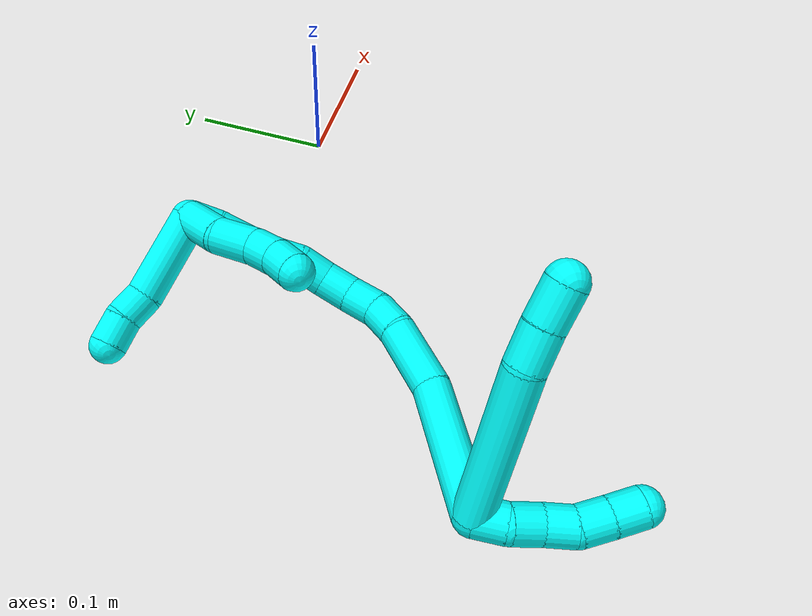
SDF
<sdf version="1.7">
 <world name="default">
  <model name="3">
   <static>0</static>
   <link name="3">
    <collision name="collision-cylinder-e_1_2_8">
     <pose>0.050005 0.000127 -0.001864 -3.07383 1.53345 -3.07125</pose>
     <geometry><cylinder><radius>0.0125</radius><length>0.100079</length></cylinder></geometry>
     <surface>
      <friction><ode><mu>1.16</mu><mu2>1.16</mu2><slip1>0</slip1><slip2>0</slip2></ode></friction>
      <contact><ode><kp>1e+06</kp><kd>1</kd><max_vel>0</max_vel><min_depth>0.001</min_depth></ode></contact>
     </surface>
    </collision>
    <visual name="visual-cylinder-e_1_2_8">
     <pose>0.050005 0.000127 -0.001864 -3.07383 1.53345 -3.07125</pose>
     <geometry><cylinder><radius>0.0125</radius><length>0.100079</length></cylinder></geometry>
     <material><ambient>0.003922 1 0.996078 1</ambient></material>
    </visual>
    <collision name="collision-cylinder-e_2_8_9">
     <pose>0.111988 -0.002067 -0.005598 2.24921 1.32697 2.04326</pose>
     <geometry><cylinder><radius>0.0125</radius><length>0.024687</length></cylinder></geometry>
     <surface>
      <friction><ode><mu>1.16</mu><mu2>1.16</mu2><slip1>0</slip1><slip2>0</slip2></ode></friction>
      <contact><ode><kp>1e+06</kp><kd>1</kd><max_vel>0</max_vel><min_depth>0.001</min_depth></ode></contact>
     </surface>
    </collision>
    <visual name="visual-cylinder-e_2_8_9">
     <pose>0.111988 -0.002067 -0.005598 2.24921 1.32697 2.04326</pose>
     <geometry><cylinder><radius>0.0125</radius><length>0.024687</length></cylinder></geometry>
     <material><ambient>0.003922 1 0.996078 1</ambient></material>
    </visual>
    <collision name="collision-cylinder-e_3_9_6">
     <pose>0.13608 -0.007505 -0.009117 2.05717 1.28753 1.78869</pose>
     <geometry><cylinder><radius>0.0125</radius><length>0.025234</length></cylinder></geometry>
     <surface>
      <friction><ode><mu>1.16</mu><mu2>1.16</mu2><slip1>0</slip1><slip2>0</slip2></ode></friction>
      <contact><ode><kp>1e+06</kp><kd>1</kd><max_vel>0</max_vel><min_depth>0.001</min_depth></ode></contact>
     </surface>
    </collision>
    <visual name="visual-cylinder-e_3_9_6">
     <pose>0.13608 -0.007505 -0.009117 2.05717 1.28753 1.78869</pose>
     <geometry><cylinder><radius>0.0125</radius><length>0.025234</length></cylinder></geometry>
     <material><ambient>0.003922 1 0.996078 1</ambient></material>
    </visual>
    <collision name="collision-cylinder-e_1_2_10">
     <pose>0.001279 -0.008618 0.004908 1.05312 0.128259 0.074626</pose>
     <geometry><cylinder><radius>0.0125</radius><length>0.02</length></cylinder></geometry>
     <surface>
      <friction><ode><mu>1.16</mu><mu2>1.16</mu2><slip1>0</slip1><slip2>0</slip2></ode></friction>
      <contact><ode><kp>1e+06</kp><kd>1</kd><max_vel>0</max_vel><min_depth>0.001</min_depth></ode></contact>
     </surface>
    </collision>
    <visual name="visual-cylinder-e_1_2_10">
     <pose>0.001279 -0.008618 0.004908 1.05312 0.128259 0.074626</pose>
     <geometry><cylinder><radius>0.0125</radius><length>0.02</length></cylinder></geometry>
     <material><ambient>0.003922 1 0.996078 1</ambient></material>
    </visual>
    <collision name="collision-cylinder-e_2_10_11">
     <pose>0.003346 -0.027054 0.011546 1.39638 0.078839 0.066172</pose>
     <geometry><cylinder><radius>0.0125</radius><length>0.02</length></cylinder></geometry>
     <surface>
      <friction><ode><mu>1.16</mu><mu2>1.16</mu2><slip1>0</slip1><slip2>0</slip2></ode></friction>
      <contact><ode><kp>1e+06</kp><kd>1</kd><max_vel>0</max_vel><min_depth>0.001</min_depth></ode></contact>
     </surface>
    </collision>
    <visual name="visual-cylinder-e_2_10_11">
     <pose>0.003346 -0.027054 0.011546 1.39638 0.078839 0.066172</pose>
     <geometry><cylinder><radius>0.0125</radius><length>0.02</length></cylinder></geometry>
     <material><ambient>0.003922 1 0.996078 1</ambient></material>
    </visual>
    <collision name="collision-cylinder-e_3_11_12">
     <pose>0.006129 -0.04598 0.01689 1.19307 0.200886 0.136662</pose>
     <geometry><cylinder><radius>0.0125</radius><length>0.02</length></cylinder></geometry>
     <surface>
      <friction><ode><mu>1.16</mu><mu2>1.16</mu2><slip1>0</slip1><slip2>0</slip2></ode></friction>
      <contact><ode><kp>1e+06</kp><kd>1</kd><max_vel>0</max_vel><min_depth>0.001</min_depth></ode></contact>
     </surface>
    </collision>
    <visual name="visual-cylinder-e_3_11_12">
     <pose>0.006129 -0.04598 0.01689 1.19307 0.200886 0.136662</pose>
     <geometry><cylinder><radius>0.0125</radius><length>0.02</length></cylinder></geometry>
     <material><ambient>0.003922 1 0.996078 1</ambient></material>
    </visual>
    <collision name="collision-cylinder-e_4_12_13">
     <pose>0.012182 -0.064182 0.021415 1.4709 0.4179 0.379101</pose>
     <geometry><cylinder><radius>0.0125</radius><length>0.02</length></cylinder></geometry>
     <surface>
      <friction><ode><mu>1.16</mu><mu2>1.16</mu2><slip1>0</slip1><slip2>0</slip2></ode></friction>
      <contact><ode><kp>1e+06</kp><kd>1</kd><max_vel>0</max_vel><min_depth>0.001</min_depth></ode></contact>
     </surface>
    </collision>
    <visual name="visual-cylinder-e_4_12_13">
     <pose>0.012182 -0.064182 0.021415 1.4709 0.4179 0.379101</pose>
     <geometry><cylinder><radius>0.0125</radius><length>0.02</length></cylinder></geometry>
     <material><ambient>0.003922 1 0.996078 1</ambient></material>
    </visual>
    <collision name="collision-cylinder-e_5_13_5">
     <pose>0.020615 -0.08222 0.023263 1.46642 0.45271 0.409072</pose>
     <geometry><cylinder><radius>0.0125</radius><length>0.02</length></cylinder></geometry>
     <surface>
      <friction><ode><mu>1.16</mu><mu2>1.16</mu2><slip1>0</slip1><slip2>0</slip2></ode></friction>
      <contact><ode><kp>1e+06</kp><kd>1</kd><max_vel>0</max_vel><min_depth>0.001</min_depth></ode></contact>
     </surface>
    </collision>
    <visual name="visual-cylinder-e_5_13_5">
     <pose>0.020615 -0.08222 0.023263 1.46642 0.45271 0.409072</pose>
     <geometry><cylinder><radius>0.0125</radius><length>0.02</length></cylinder></geometry>
     <material><ambient>0.003922 1 0.996078 1</ambient></material>
    </visual>
    <collision name="collision-cylinder-e_1_2_14">
     <pose>0.013929 7.6e-05 -0.041299 -3.13975 0.325293 -3.13036</pose>
     <geometry><cylinder><radius>0.0125</radius><length>0.087169</length></cylinder></geometry>
     <surface>
      <friction><ode><mu>1.16</mu><mu2>1.16</mu2><slip1>0</slip1><slip2>0</slip2></ode></friction>
      <contact><ode><kp>1e+06</kp><kd>1</kd><max_vel>0</max_vel><min_depth>0.001</min_depth></ode></contact>
     </surface>
    </collision>
    <visual name="visual-cylinder-e_1_2_14">
     <pose>0.013929 7.6e-05 -0.041299 -3.13975 0.325293 -3.13036</pose>
     <geometry><cylinder><radius>0.0125</radius><length>0.087169</length></cylinder></geometry>
     <material><ambient>0.003922 1 0.996078 1</ambient></material>
    </visual>
    <collision name="collision-cylinder-e_2_14_15">
     <pose>0.035337 0.006648 -0.103213 -2.83635 0.33313 -1.65959</pose>
     <geometry><cylinder><radius>0.0125</radius><length>0.045745</length></cylinder></geometry>
     <surface>
      <friction><ode><mu>1.16</mu><mu2>1.16</mu2><slip1>0</slip1><slip2>0</slip2></ode></friction>
      <contact><ode><kp>1e+06</kp><kd>1</kd><max_vel>0</max_vel><min_depth>0.001</min_depth></ode></contact>
     </surface>
    </collision>
    <visual name="visual-cylinder-e_2_14_15">
     <pose>0.035337 0.006648 -0.103213 -2.83635 0.33313 -1.65959</pose>
     <geometry><cylinder><radius>0.0125</radius><length>0.045745</length></cylinder></geometry>
     <material><ambient>0.003922 1 0.996078 1</ambient></material>
    </visual>
    <collision name="collision-cylinder-e_3_15_16">
     <pose>0.044076 0.016893 -0.134233 -2.79573 0.113403 -0.628384</pose>
     <geometry><cylinder><radius>0.0125</radius><length>0.022261</length></cylinder></geometry>
     <surface>
      <friction><ode><mu>1.16</mu><mu2>1.16</mu2><slip1>0</slip1><slip2>0</slip2></ode></friction>
      <contact><ode><kp>1e+06</kp><kd>1</kd><max_vel>0</max_vel><min_depth>0.001</min_depth></ode></contact>
     </surface>
    </collision>
    <visual name="visual-cylinder-e_3_15_16">
     <pose>0.044076 0.016893 -0.134233 -2.79573 0.113403 -0.628384</pose>
     <geometry><cylinder><radius>0.0125</radius><length>0.022261</length></cylinder></geometry>
     <material><ambient>0.003922 1 0.996078 1</ambient></material>
    </visual>
    <collision name="collision-cylinder-e_4_16_17">
     <pose>0.045402 0.027528 -0.153527 -2.4826 0.0059 -0.017254</pose>
     <geometry><cylinder><radius>0.0125</radius><length>0.022489</length></cylinder></geometry>
     <surface>
      <friction><ode><mu>1.16</mu><mu2>1.16</mu2><slip1>0</slip1><slip2>0</slip2></ode></friction>
      <contact><ode><kp>1e+06</kp><kd>1</kd><max_vel>0</max_vel><min_depth>0.001</min_depth></ode></contact>
     </surface>
    </collision>
    <visual name="visual-cylinder-e_4_16_17">
     <pose>0.045402 0.027528 -0.153527 -2.4826 0.0059 -0.017254</pose>
     <geometry><cylinder><radius>0.0125</radius><length>0.022489</length></cylinder></geometry>
     <material><ambient>0.003922 1 0.996078 1</ambient></material>
    </visual>
    <collision name="collision-cylinder-e_5_17_18">
     <pose>0.047353 0.04259 -0.169215 -2.26436 0.175366 -0.370505</pose>
     <geometry><cylinder><radius>0.0125</radius><length>0.0216</length></cylinder></geometry>
     <surface>
      <friction><ode><mu>1.16</mu><mu2>1.16</mu2><slip1>0</slip1><slip2>0</slip2></ode></friction>
      <contact><ode><kp>1e+06</kp><kd>1</kd><max_vel>0</max_vel><min_depth>0.001</min_depth></ode></contact>
     </surface>
    </collision>
    <visual name="visual-cylinder-e_5_17_18">
     <pose>0.047353 0.04259 -0.169215 -2.26436 0.175366 -0.370505</pose>
     <geometry><cylinder><radius>0.0125</radius><length>0.0216</length></cylinder></geometry>
     <material><ambient>0.003922 1 0.996078 1</ambient></material>
    </visual>
    <collision name="collision-cylinder-e_6_18_19">
     <pose>0.052589 0.059226 -0.180308 -2.04058 0.339687 -0.5449</pose>
     <geometry><cylinder><radius>0.0125</radius><length>0.020121</length></cylinder></geometry>
     <surface>
      <friction><ode><mu>1.16</mu><mu2>1.16</mu2><slip1>0</slip1><slip2>0</slip2></ode></friction>
      <contact><ode><kp>1e+06</kp><kd>1</kd><max_vel>0</max_vel><min_depth>0.001</min_depth></ode></contact>
     </surface>
    </collision>
    <visual name="visual-cylinder-e_6_18_19">
     <pose>0.052589 0.059226 -0.180308 -2.04058 0.339687 -0.5449</pose>
     <geometry><cylinder><radius>0.0125</radius><length>0.020121</length></cylinder></geometry>
     <material><ambient>0.003922 1 0.996078 1</ambient></material>
    </visual>
    <collision name="collision-cylinder-e_7_19_20">
     <pose>0.056431 0.076892 -0.188711 -1.99056 0.04859 -0.074874</pose>
     <geometry><cylinder><radius>0.0125</radius><length>0.02019</length></cylinder></geometry>
     <surface>
      <friction><ode><mu>1.16</mu><mu2>1.16</mu2><slip1>0</slip1><slip2>0</slip2></ode></friction>
      <contact><ode><kp>1e+06</kp><kd>1</kd><max_vel>0</max_vel><min_depth>0.001</min_depth></ode></contact>
     </surface>
    </collision>
    <visual name="visual-cylinder-e_7_19_20">
     <pose>0.056431 0.076892 -0.188711 -1.99056 0.04859 -0.074874</pose>
     <geometry><cylinder><radius>0.0125</radius><length>0.02019</length></cylinder></geometry>
     <material><ambient>0.003922 1 0.996078 1</ambient></material>
    </visual>
    <collision name="collision-cylinder-e_8_20_21">
     <pose>0.058964 0.095283 -0.196662 -1.96697 0.20235 -0.302689</pose>
     <geometry><cylinder><radius>0.0125</radius><length>0.020324</length></cylinder></geometry>
     <surface>
      <friction><ode><mu>1.16</mu><mu2>1.16</mu2><slip1>0</slip1><slip2>0</slip2></ode></friction>
      <contact><ode><kp>1e+06</kp><kd>1</kd><max_vel>0</max_vel><min_depth>0.001</min_depth></ode></contact>
     </surface>
    </collision>
    <visual name="visual-cylinder-e_8_20_21">
     <pose>0.058964 0.095283 -0.196662 -1.96697 0.20235 -0.302689</pose>
     <geometry><cylinder><radius>0.0125</radius><length>0.020324</length></cylinder></geometry>
     <material><ambient>0.003922 1 0.996078 1</ambient></material>
    </visual>
    <collision name="collision-cylinder-e_9_21_22">
     <pose>0.0635 0.113477 -0.204136 -1.95409 0.251254 -0.369919</pose>
     <geometry><cylinder><radius>0.0125</radius><length>0.02006</length></cylinder></geometry>
     <surface>
      <friction><ode><mu>1.16</mu><mu2>1.16</mu2><slip1>0</slip1><slip2>0</slip2></ode></friction>
      <contact><ode><kp>1e+06</kp><kd>1</kd><max_vel>0</max_vel><min_depth>0.001</min_depth></ode></contact>
     </surface>
    </collision>
    <visual name="visual-cylinder-e_9_21_22">
     <pose>0.0635 0.113477 -0.204136 -1.95409 0.251254 -0.369919</pose>
     <geometry><cylinder><radius>0.0125</radius><length>0.02006</length></cylinder></geometry>
     <material><ambient>0.003922 1 0.996078 1</ambient></material>
    </visual>
    <collision name="collision-cylinder-e_10_22_1">
     <pose>0.06723 0.131799 -0.211259 -1.92933 0.123679 -0.17818</pose>
     <geometry><cylinder><radius>0.0125</radius><length>0.020041</length></cylinder></geometry>
     <surface>
      <friction><ode><mu>1.16</mu><mu2>1.16</mu2><slip1>0</slip1><slip2>0</slip2></ode></friction>
      <contact><ode><kp>1e+06</kp><kd>1</kd><max_vel>0</max_vel><min_depth>0.001</min_depth></ode></contact>
     </surface>
    </collision>
    <visual name="visual-cylinder-e_10_22_1">
     <pose>0.06723 0.131799 -0.211259 -1.92933 0.123679 -0.17818</pose>
     <geometry><cylinder><radius>0.0125</radius><length>0.020041</length></cylinder></geometry>
     <material><ambient>0.003922 1 0.996078 1</ambient></material>
    </visual>
    <collision name="collision-cylinder-e_1_1_23">
     <pose>0.043918 0.154021 -0.203388 -0.849181 -0.959699 0.462148</pose>
     <geometry><cylinder><radius>0.0125</radius><length>0.059946</length></cylinder></geometry>
     <surface>
      <friction><ode><mu>1.16</mu><mu2>1.16</mu2><slip1>0</slip1><slip2>0</slip2></ode></friction>
      <contact><ode><kp>1e+06</kp><kd>1</kd><max_vel>0</max_vel><min_depth>0.001</min_depth></ode></contact>
     </surface>
    </collision>
    <visual name="visual-cylinder-e_1_1_23">
     <pose>0.043918 0.154021 -0.203388 -0.849181 -0.959699 0.462148</pose>
     <geometry><cylinder><radius>0.0125</radius><length>0.059946</length></cylinder></geometry>
     <material><ambient>0.003922 1 0.996078 1</ambient></material>
    </visual>
    <collision name="collision-cylinder-e_2_23_24">
     <pose>0.01303 0.173421 -0.187798 -0.993229 -0.685861 0.382245</pose>
     <geometry><cylinder><radius>0.0125</radius><length>0.020019</length></cylinder></geometry>
     <surface>
      <friction><ode><mu>1.16</mu><mu2>1.16</mu2><slip1>0</slip1><slip2>0</slip2></ode></friction>
      <contact><ode><kp>1e+06</kp><kd>1</kd><max_vel>0</max_vel><min_depth>0.001</min_depth></ode></contact>
     </surface>
    </collision>
    <visual name="visual-cylinder-e_2_23_24">
     <pose>0.01303 0.173421 -0.187798 -0.993229 -0.685861 0.382245</pose>
     <geometry><cylinder><radius>0.0125</radius><length>0.020019</length></cylinder></geometry>
     <material><ambient>0.003922 1 0.996078 1</ambient></material>
    </visual>
    <collision name="collision-cylinder-e_3_24_4">
     <pose>-0.000865 0.18423 -0.178607 -0.71628 -0.854452 0.337554</pose>
     <geometry><cylinder><radius>0.0125</radius><length>0.020036</length></cylinder></geometry>
     <surface>
      <friction><ode><mu>1.16</mu><mu2>1.16</mu2><slip1>0</slip1><slip2>0</slip2></ode></friction>
      <contact><ode><kp>1e+06</kp><kd>1</kd><max_vel>0</max_vel><min_depth>0.001</min_depth></ode></contact>
     </surface>
    </collision>
    <visual name="visual-cylinder-e_3_24_4">
     <pose>-0.000865 0.18423 -0.178607 -0.71628 -0.854452 0.337554</pose>
     <geometry><cylinder><radius>0.0125</radius><length>0.020036</length></cylinder></geometry>
     <material><ambient>0.003922 1 0.996078 1</ambient></material>
    </visual>
    <collision name="collision-cylinder-e_1_1_25">
     <pose>0.069461 0.133654 -0.201285 0.505799 0.064575 0.016694</pose>
     <geometry><cylinder><radius>0.0125</radius><length>0.030845</length></cylinder></geometry>
     <surface>
      <friction><ode><mu>1.16</mu><mu2>1.16</mu2><slip1>0</slip1><slip2>0</slip2></ode></friction>
      <contact><ode><kp>1e+06</kp><kd>1</kd><max_vel>0</max_vel><min_depth>0.001</min_depth></ode></contact>
     </surface>
    </collision>
    <visual name="visual-cylinder-e_1_1_25">
     <pose>0.069461 0.133654 -0.201285 0.505799 0.064575 0.016694</pose>
     <geometry><cylinder><radius>0.0125</radius><length>0.030845</length></cylinder></geometry>
     <material><ambient>0.003922 1 0.996078 1</ambient></material>
    </visual>
    <collision name="collision-cylinder-e_2_25_26">
     <pose>0.072225 0.115964 -0.178301 0.821448 0.125899 0.054887</pose>
     <geometry><cylinder><radius>0.0125</radius><length>0.028178</length></cylinder></geometry>
     <surface>
      <friction><ode><mu>1.16</mu><mu2>1.16</mu2><slip1>0</slip1><slip2>0</slip2></ode></friction>
      <contact><ode><kp>1e+06</kp><kd>1</kd><max_vel>0</max_vel><min_depth>0.001</min_depth></ode></contact>
     </surface>
    </collision>
    <visual name="visual-cylinder-e_2_25_26">
     <pose>0.072225 0.115964 -0.178301 0.821448 0.125899 0.054887</pose>
     <geometry><cylinder><radius>0.0125</radius><length>0.028178</length></cylinder></geometry>
     <material><ambient>0.003922 1 0.996078 1</ambient></material>
    </visual>
    <collision name="collision-cylinder-e_3_26_27">
     <pose>0.075083 0.10052 -0.160154 0.543328 0.107555 0.029986</pose>
     <geometry><cylinder><radius>0.0125</radius><length>0.020272</length></cylinder></geometry>
     <surface>
      <friction><ode><mu>1.16</mu><mu2>1.16</mu2><slip1>0</slip1><slip2>0</slip2></ode></friction>
      <contact><ode><kp>1e+06</kp><kd>1</kd><max_vel>0</max_vel><min_depth>0.001</min_depth></ode></contact>
     </surface>
    </collision>
    <visual name="visual-cylinder-e_3_26_27">
     <pose>0.075083 0.10052 -0.160154 0.543328 0.107555 0.029986</pose>
     <geometry><cylinder><radius>0.0125</radius><length>0.020272</length></cylinder></geometry>
     <material><ambient>0.003922 1 0.996078 1</ambient></material>
    </visual>
    <collision name="collision-cylinder-e_4_27_3">
     <pose>0.076903 0.091981 -0.141752 0.328207 0.070748 0.01172</pose>
     <geometry><cylinder><radius>0.0125</radius><length>0.020705</length></cylinder></geometry>
     <surface>
      <friction><ode><mu>1.16</mu><mu2>1.16</mu2><slip1>0</slip1><slip2>0</slip2></ode></friction>
      <contact><ode><kp>1e+06</kp><kd>1</kd><max_vel>0</max_vel><min_depth>0.001</min_depth></ode></contact>
     </surface>
    </collision>
    <visual name="visual-cylinder-e_4_27_3">
     <pose>0.076903 0.091981 -0.141752 0.328207 0.070748 0.01172</pose>
     <geometry><cylinder><radius>0.0125</radius><length>0.020705</length></cylinder></geometry>
     <material><ambient>0.003922 1 0.996078 1</ambient></material>
    </visual>
    <collision name="collision-sphere-3">
     <pose>0.077634 0.088653 -0.131977 0 -0 0</pose>
     <geometry><sphere><radius>0.0125</radius></sphere></geometry>
     <surface>
      <friction><ode><mu>1.16</mu><mu2>1.16</mu2><slip1>0</slip1><slip2>0</slip2></ode></friction>
      <contact><ode><kp>1e+06</kp><kd>1</kd><max_vel>0</max_vel><min_depth>0.001</min_depth></ode></contact>
     </surface>
    </collision>
    <visual name="visual-sphere-3">
     <pose>0.077634 0.088653 -0.131977 0 -0 0</pose>
     <geometry><sphere><radius>0.0125</radius></sphere></geometry>
     <material><ambient>0.003922 1 0.996078 1</ambient></material>
    </visual>
    <collision name="collision-sphere-27">
     <pose>0.076171 0.09531 -0.151527 0 -0 0</pose>
     <geometry><sphere><radius>0.0125</radius></sphere></geometry>
     <surface>
      <friction><ode><mu>1.16</mu><mu2>1.16</mu2><slip1>0</slip1><slip2>0</slip2></ode></friction>
      <contact><ode><kp>1e+06</kp><kd>1</kd><max_vel>0</max_vel><min_depth>0.001</min_depth></ode></contact>
     </surface>
    </collision>
    <visual name="visual-sphere-27">
     <pose>0.076171 0.09531 -0.151527 0 -0 0</pose>
     <geometry><sphere><radius>0.0125</radius></sphere></geometry>
     <material><ambient>0.003922 1 0.996078 1</ambient></material>
    </visual>
    <collision name="collision-sphere-26">
     <pose>0.073995 0.10573 -0.16878 0 -0 0</pose>
     <geometry><sphere><radius>0.0125</radius></sphere></geometry>
     <surface>
      <friction><ode><mu>1.16</mu><mu2>1.16</mu2><slip1>0</slip1><slip2>0</slip2></ode></friction>
      <contact><ode><kp>1e+06</kp><kd>1</kd><max_vel>0</max_vel><min_depth>0.001</min_depth></ode></contact>
     </surface>
    </collision>
    <visual name="visual-sphere-26">
     <pose>0.073995 0.10573 -0.16878 0 -0 0</pose>
     <geometry><sphere><radius>0.0125</radius></sphere></geometry>
     <material><ambient>0.003922 1 0.996078 1</ambient></material>
    </visual>
    <collision name="collision-sphere-25">
     <pose>0.070456 0.126197 -0.187822 0 -0 0</pose>
     <geometry><sphere><radius>0.0125</radius></sphere></geometry>
     <surface>
      <friction><ode><mu>1.16</mu><mu2>1.16</mu2><slip1>0</slip1><slip2>0</slip2></ode></friction>
      <contact><ode><kp>1e+06</kp><kd>1</kd><max_vel>0</max_vel><min_depth>0.001</min_depth></ode></contact>
     </surface>
    </collision>
    <visual name="visual-sphere-25">
     <pose>0.070456 0.126197 -0.187822 0 -0 0</pose>
     <geometry><sphere><radius>0.0125</radius></sphere></geometry>
     <material><ambient>0.003922 1 0.996078 1</ambient></material>
    </visual>
    <collision name="collision-sphere-4">
     <pose>-0.00842 0.188549 -0.173646 0 -0 0</pose>
     <geometry><sphere><radius>0.0125</radius></sphere></geometry>
     <surface>
      <friction><ode><mu>1.16</mu><mu2>1.16</mu2><slip1>0</slip1><slip2>0</slip2></ode></friction>
      <contact><ode><kp>1e+06</kp><kd>1</kd><max_vel>0</max_vel><min_depth>0.001</min_depth></ode></contact>
     </surface>
    </collision>
    <visual name="visual-sphere-4">
     <pose>-0.00842 0.188549 -0.173646 0 -0 0</pose>
     <geometry><sphere><radius>0.0125</radius></sphere></geometry>
     <material><ambient>0.003922 1 0.996078 1</ambient></material>
    </visual>
    <collision name="collision-sphere-24">
     <pose>0.006691 0.179911 -0.183569 0 -0 0</pose>
     <geometry><sphere><radius>0.0125</radius></sphere></geometry>
     <surface>
      <friction><ode><mu>1.16</mu><mu2>1.16</mu2><slip1>0</slip1><slip2>0</slip2></ode></friction>
      <contact><ode><kp>1e+06</kp><kd>1</kd><max_vel>0</max_vel><min_depth>0.001</min_depth></ode></contact>
     </surface>
    </collision>
    <visual name="visual-sphere-24">
     <pose>0.006691 0.179911 -0.183569 0 -0 0</pose>
     <geometry><sphere><radius>0.0125</radius></sphere></geometry>
     <material><ambient>0.003922 1 0.996078 1</ambient></material>
    </visual>
    <collision name="collision-sphere-23">
     <pose>0.019369 0.166932 -0.192027 0 -0 0</pose>
     <geometry><sphere><radius>0.0125</radius></sphere></geometry>
     <surface>
      <friction><ode><mu>1.16</mu><mu2>1.16</mu2><slip1>0</slip1><slip2>0</slip2></ode></friction>
      <contact><ode><kp>1e+06</kp><kd>1</kd><max_vel>0</max_vel><min_depth>0.001</min_depth></ode></contact>
     </surface>
    </collision>
    <visual name="visual-sphere-23">
     <pose>0.019369 0.166932 -0.192027 0 -0 0</pose>
     <geometry><sphere><radius>0.0125</radius></sphere></geometry>
     <material><ambient>0.003922 1 0.996078 1</ambient></material>
    </visual>
    <collision name="collision-sphere-1">
     <pose>0.068466 0.14111 -0.214748 0 -0 0</pose>
     <geometry><sphere><radius>0.0125</radius></sphere></geometry>
     <surface>
      <friction><ode><mu>1.16</mu><mu2>1.16</mu2><slip1>0</slip1><slip2>0</slip2></ode></friction>
      <contact><ode><kp>1e+06</kp><kd>1</kd><max_vel>0</max_vel><min_depth>0.001</min_depth></ode></contact>
     </surface>
    </collision>
    <visual name="visual-sphere-1">
     <pose>0.068466 0.14111 -0.214748 0 -0 0</pose>
     <geometry><sphere><radius>0.0125</radius></sphere></geometry>
     <material><ambient>0.003922 1 0.996078 1</ambient></material>
    </visual>
    <collision name="collision-sphere-22">
     <pose>0.065994 0.122487 -0.20777 0 -0 0</pose>
     <geometry><sphere><radius>0.0125</radius></sphere></geometry>
     <surface>
      <friction><ode><mu>1.16</mu><mu2>1.16</mu2><slip1>0</slip1><slip2>0</slip2></ode></friction>
      <contact><ode><kp>1e+06</kp><kd>1</kd><max_vel>0</max_vel><min_depth>0.001</min_depth></ode></contact>
     </surface>
    </collision>
    <visual name="visual-sphere-22">
     <pose>0.065994 0.122487 -0.20777 0 -0 0</pose>
     <geometry><sphere><radius>0.0125</radius></sphere></geometry>
     <material><ambient>0.003922 1 0.996078 1</ambient></material>
    </visual>
    <collision name="collision-sphere-21">
     <pose>0.061006 0.104467 -0.200503 0 -0 0</pose>
     <geometry><sphere><radius>0.0125</radius></sphere></geometry>
     <surface>
      <friction><ode><mu>1.16</mu><mu2>1.16</mu2><slip1>0</slip1><slip2>0</slip2></ode></friction>
      <contact><ode><kp>1e+06</kp><kd>1</kd><max_vel>0</max_vel><min_depth>0.001</min_depth></ode></contact>
     </surface>
    </collision>
    <visual name="visual-sphere-21">
     <pose>0.061006 0.104467 -0.200503 0 -0 0</pose>
     <geometry><sphere><radius>0.0125</radius></sphere></geometry>
     <material><ambient>0.003922 1 0.996078 1</ambient></material>
    </visual>
    <collision name="collision-sphere-11">
     <pose>0.004133 -0.036872 0.013276 0 -0 0</pose>
     <geometry><sphere><radius>0.0125</radius></sphere></geometry>
     <surface>
      <friction><ode><mu>1.16</mu><mu2>1.16</mu2><slip1>0</slip1><slip2>0</slip2></ode></friction>
      <contact><ode><kp>1e+06</kp><kd>1</kd><max_vel>0</max_vel><min_depth>0.001</min_depth></ode></contact>
     </surface>
    </collision>
    <visual name="visual-sphere-11">
     <pose>0.004133 -0.036872 0.013276 0 -0 0</pose>
     <geometry><sphere><radius>0.0125</radius></sphere></geometry>
     <material><ambient>0.003922 1 0.996078 1</ambient></material>
    </visual>
    <collision name="collision-sphere-10">
     <pose>0.002558 -0.017237 0.009816 0 -0 0</pose>
     <geometry><sphere><radius>0.0125</radius></sphere></geometry>
     <surface>
      <friction><ode><mu>1.16</mu><mu2>1.16</mu2><slip1>0</slip1><slip2>0</slip2></ode></friction>
      <contact><ode><kp>1e+06</kp><kd>1</kd><max_vel>0</max_vel><min_depth>0.001</min_depth></ode></contact>
     </surface>
    </collision>
    <visual name="visual-sphere-10">
     <pose>0.002558 -0.017237 0.009816 0 -0 0</pose>
     <geometry><sphere><radius>0.0125</radius></sphere></geometry>
     <material><ambient>0.003922 1 0.996078 1</ambient></material>
    </visual>
    <collision name="collision-sphere-6">
     <pose>0.148194 -0.010622 -0.010765 0 -0 0</pose>
     <geometry><sphere><radius>0.0125</radius></sphere></geometry>
     <surface>
      <friction><ode><mu>1.16</mu><mu2>1.16</mu2><slip1>0</slip1><slip2>0</slip2></ode></friction>
      <contact><ode><kp>1e+06</kp><kd>1</kd><max_vel>0</max_vel><min_depth>0.001</min_depth></ode></contact>
     </surface>
    </collision>
    <visual name="visual-sphere-6">
     <pose>0.148194 -0.010622 -0.010765 0 -0 0</pose>
     <geometry><sphere><radius>0.0125</radius></sphere></geometry>
     <material><ambient>0.003922 1 0.996078 1</ambient></material>
    </visual>
    <collision name="collision-sphere-9">
     <pose>0.123966 -0.004387 -0.007468 0 -0 0</pose>
     <geometry><sphere><radius>0.0125</radius></sphere></geometry>
     <surface>
      <friction><ode><mu>1.16</mu><mu2>1.16</mu2><slip1>0</slip1><slip2>0</slip2></ode></friction>
      <contact><ode><kp>1e+06</kp><kd>1</kd><max_vel>0</max_vel><min_depth>0.001</min_depth></ode></contact>
     </surface>
    </collision>
    <visual name="visual-sphere-9">
     <pose>0.123966 -0.004387 -0.007468 0 -0 0</pose>
     <geometry><sphere><radius>0.0125</radius></sphere></geometry>
     <material><ambient>0.003922 1 0.996078 1</ambient></material>
    </visual>
    <collision name="collision-sphere-2">
     <geometry><sphere><radius>0.0125</radius></sphere></geometry>
     <surface>
      <friction><ode><mu>1.16</mu><mu2>1.16</mu2><slip1>0</slip1><slip2>0</slip2></ode></friction>
      <contact><ode><kp>1e+06</kp><kd>1</kd><max_vel>0</max_vel><min_depth>0.001</min_depth></ode></contact>
     </surface>
    </collision>
    <visual name="visual-sphere-2">
     <geometry><sphere><radius>0.0125</radius></sphere></geometry>
     <material><ambient>0.003922 1 0.996078 1</ambient></material>
    </visual>
    <collision name="collision-sphere-19">
     <pose>0.055941 0.067684 -0.184602 0 -0 0</pose>
     <geometry><sphere><radius>0.0125</radius></sphere></geometry>
     <surface>
      <friction><ode><mu>1.16</mu><mu2>1.16</mu2><slip1>0</slip1><slip2>0</slip2></ode></friction>
      <contact><ode><kp>1e+06</kp><kd>1</kd><max_vel>0</max_vel><min_depth>0.001</min_depth></ode></contact>
     </surface>
    </collision>
    <visual name="visual-sphere-19">
     <pose>0.055941 0.067684 -0.184602 0 -0 0</pose>
     <geometry><sphere><radius>0.0125</radius></sphere></geometry>
     <material><ambient>0.003922 1 0.996078 1</ambient></material>
    </visual>
    <collision name="collision-sphere-8">
     <pose>0.10001 0.000253 -0.003728 0 -0 0</pose>
     <geometry><sphere><radius>0.0125</radius></sphere></geometry>
     <surface>
      <friction><ode><mu>1.16</mu><mu2>1.16</mu2><slip1>0</slip1><slip2>0</slip2></ode></friction>
      <contact><ode><kp>1e+06</kp><kd>1</kd><max_vel>0</max_vel><min_depth>0.001</min_depth></ode></contact>
     </surface>
    </collision>
    <visual name="visual-sphere-8">
     <pose>0.10001 0.000253 -0.003728 0 -0 0</pose>
     <geometry><sphere><radius>0.0125</radius></sphere></geometry>
     <material><ambient>0.003922 1 0.996078 1</ambient></material>
    </visual>
    <collision name="collision-sphere-12">
     <pose>0.008124 -0.055088 0.020504 0 -0 0</pose>
     <geometry><sphere><radius>0.0125</radius></sphere></geometry>
     <surface>
      <friction><ode><mu>1.16</mu><mu2>1.16</mu2><slip1>0</slip1><slip2>0</slip2></ode></friction>
      <contact><ode><kp>1e+06</kp><kd>1</kd><max_vel>0</max_vel><min_depth>0.001</min_depth></ode></contact>
     </surface>
    </collision>
    <visual name="visual-sphere-12">
     <pose>0.008124 -0.055088 0.020504 0 -0 0</pose>
     <geometry><sphere><radius>0.0125</radius></sphere></geometry>
     <material><ambient>0.003922 1 0.996078 1</ambient></material>
    </visual>
    <collision name="collision-sphere-13">
     <pose>0.016241 -0.073276 0.022327 0 -0 0</pose>
     <geometry><sphere><radius>0.0125</radius></sphere></geometry>
     <surface>
      <friction><ode><mu>1.16</mu><mu2>1.16</mu2><slip1>0</slip1><slip2>0</slip2></ode></friction>
      <contact><ode><kp>1e+06</kp><kd>1</kd><max_vel>0</max_vel><min_depth>0.001</min_depth></ode></contact>
     </surface>
    </collision>
    <visual name="visual-sphere-13">
     <pose>0.016241 -0.073276 0.022327 0 -0 0</pose>
     <geometry><sphere><radius>0.0125</radius></sphere></geometry>
     <material><ambient>0.003922 1 0.996078 1</ambient></material>
    </visual>
    <collision name="collision-sphere-5">
     <pose>0.024989 -0.091164 0.0242 0 -0 0</pose>
     <geometry><sphere><radius>0.0125</radius></sphere></geometry>
     <surface>
      <friction><ode><mu>1.16</mu><mu2>1.16</mu2><slip1>0</slip1><slip2>0</slip2></ode></friction>
      <contact><ode><kp>1e+06</kp><kd>1</kd><max_vel>0</max_vel><min_depth>0.001</min_depth></ode></contact>
     </surface>
    </collision>
    <visual name="visual-sphere-5">
     <pose>0.024989 -0.091164 0.0242 0 -0 0</pose>
     <geometry><sphere><radius>0.0125</radius></sphere></geometry>
     <material><ambient>0.003922 1 0.996078 1</ambient></material>
    </visual>
    <collision name="collision-sphere-14">
     <pose>0.027858 0.000152 -0.082597 0 -0 0</pose>
     <geometry><sphere><radius>0.0125</radius></sphere></geometry>
     <surface>
      <friction><ode><mu>1.16</mu><mu2>1.16</mu2><slip1>0</slip1><slip2>0</slip2></ode></friction>
      <contact><ode><kp>1e+06</kp><kd>1</kd><max_vel>0</max_vel><min_depth>0.001</min_depth></ode></contact>
     </surface>
    </collision>
    <visual name="visual-sphere-14">
     <pose>0.027858 0.000152 -0.082597 0 -0 0</pose>
     <geometry><sphere><radius>0.0125</radius></sphere></geometry>
     <material><ambient>0.003922 1 0.996078 1</ambient></material>
    </visual>
    <collision name="collision-sphere-15">
     <pose>0.042817 0.013144 -0.123829 0 -0 0</pose>
     <geometry><sphere><radius>0.0125</radius></sphere></geometry>
     <surface>
      <friction><ode><mu>1.16</mu><mu2>1.16</mu2><slip1>0</slip1><slip2>0</slip2></ode></friction>
      <contact><ode><kp>1e+06</kp><kd>1</kd><max_vel>0</max_vel><min_depth>0.001</min_depth></ode></contact>
     </surface>
    </collision>
    <visual name="visual-sphere-15">
     <pose>0.042817 0.013144 -0.123829 0 -0 0</pose>
     <geometry><sphere><radius>0.0125</radius></sphere></geometry>
     <material><ambient>0.003922 1 0.996078 1</ambient></material>
    </visual>
    <collision name="collision-sphere-16">
     <pose>0.045336 0.020642 -0.144637 0 -0 0</pose>
     <geometry><sphere><radius>0.0125</radius></sphere></geometry>
     <surface>
      <friction><ode><mu>1.16</mu><mu2>1.16</mu2><slip1>0</slip1><slip2>0</slip2></ode></friction>
      <contact><ode><kp>1e+06</kp><kd>1</kd><max_vel>0</max_vel><min_depth>0.001</min_depth></ode></contact>
     </surface>
    </collision>
    <visual name="visual-sphere-16">
     <pose>0.045336 0.020642 -0.144637 0 -0 0</pose>
     <geometry><sphere><radius>0.0125</radius></sphere></geometry>
     <material><ambient>0.003922 1 0.996078 1</ambient></material>
    </visual>
    <collision name="collision-sphere-17">
     <pose>0.045468 0.034413 -0.162417 0 -0 0</pose>
     <geometry><sphere><radius>0.0125</radius></sphere></geometry>
     <surface>
      <friction><ode><mu>1.16</mu><mu2>1.16</mu2><slip1>0</slip1><slip2>0</slip2></ode></friction>
      <contact><ode><kp>1e+06</kp><kd>1</kd><max_vel>0</max_vel><min_depth>0.001</min_depth></ode></contact>
     </surface>
    </collision>
    <visual name="visual-sphere-17">
     <pose>0.045468 0.034413 -0.162417 0 -0 0</pose>
     <geometry><sphere><radius>0.0125</radius></sphere></geometry>
     <material><ambient>0.003922 1 0.996078 1</ambient></material>
    </visual>
    <collision name="collision-sphere-18">
     <pose>0.049237 0.050768 -0.176014 0 -0 0</pose>
     <geometry><sphere><radius>0.0125</radius></sphere></geometry>
     <surface>
      <friction><ode><mu>1.16</mu><mu2>1.16</mu2><slip1>0</slip1><slip2>0</slip2></ode></friction>
      <contact><ode><kp>1e+06</kp><kd>1</kd><max_vel>0</max_vel><min_depth>0.001</min_depth></ode></contact>
     </surface>
    </collision>
    <visual name="visual-sphere-18">
     <pose>0.049237 0.050768 -0.176014 0 -0 0</pose>
     <geometry><sphere><radius>0.0125</radius></sphere></geometry>
     <material><ambient>0.003922 1 0.996078 1</ambient></material>
    </visual>
    <collision name="collision-sphere-20">
     <pose>0.056922 0.086099 -0.19282 0 -0 0</pose>
     <geometry><sphere><radius>0.0125</radius></sphere></geometry>
     <surface>
      <friction><ode><mu>1.16</mu><mu2>1.16</mu2><slip1>0</slip1><slip2>0</slip2></ode></friction>
      <contact><ode><kp>1e+06</kp><kd>1</kd><max_vel>0</max_vel><min_depth>0.001</min_depth></ode></contact>
     </surface>
    </collision>
    <visual name="visual-sphere-20">
     <pose>0.056922 0.086099 -0.19282 0 -0 0</pose>
     <geometry><sphere><radius>0.0125</radius></sphere></geometry>
     <material><ambient>0.003922 1 0.996078 1</ambient></material>
    </visual>
    <inertial>
     <pose>0.045487 0.046351 -0.098827 0 -0 0</pose>
     <mass>0.75</mass>
     <inertia>
      <ixx>-1.1e-05</ixx>
      <ixy>0</ixy>
      <ixz>0</ixz>
      <iyy>0.000174</iyy>
      <iyz>0</iyz>
      <izz>-0.000116</izz>
     </inertia>
    </inertial>
   </link>
   <pose>-0.268109 -0.188607 0.016604 0.764633 -1.07191 -0.19203</pose>
  </model>
 </world>
</sdf>
